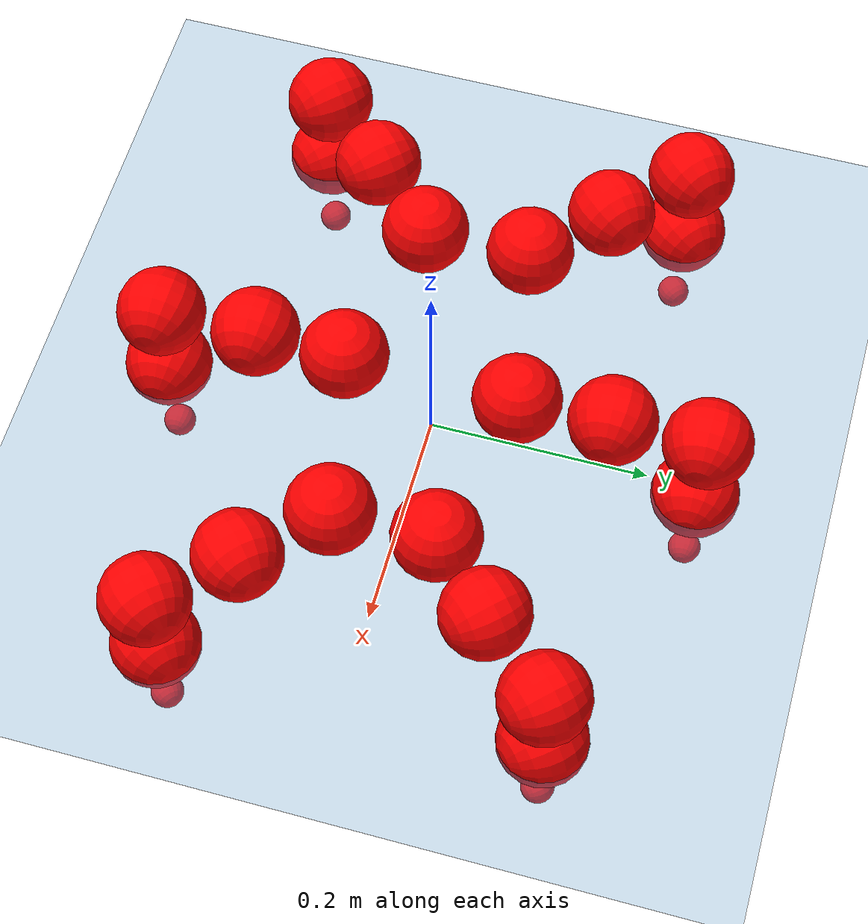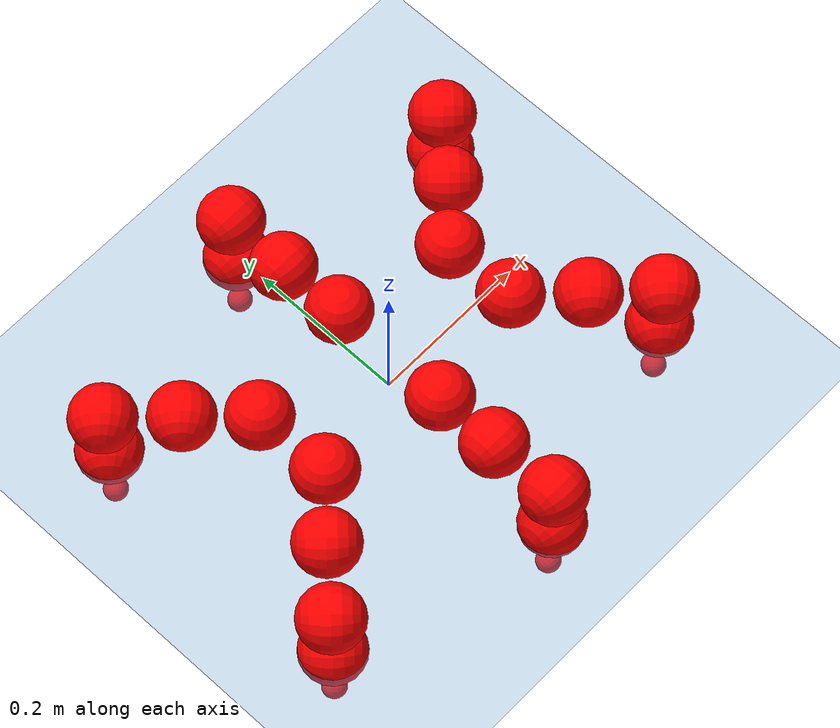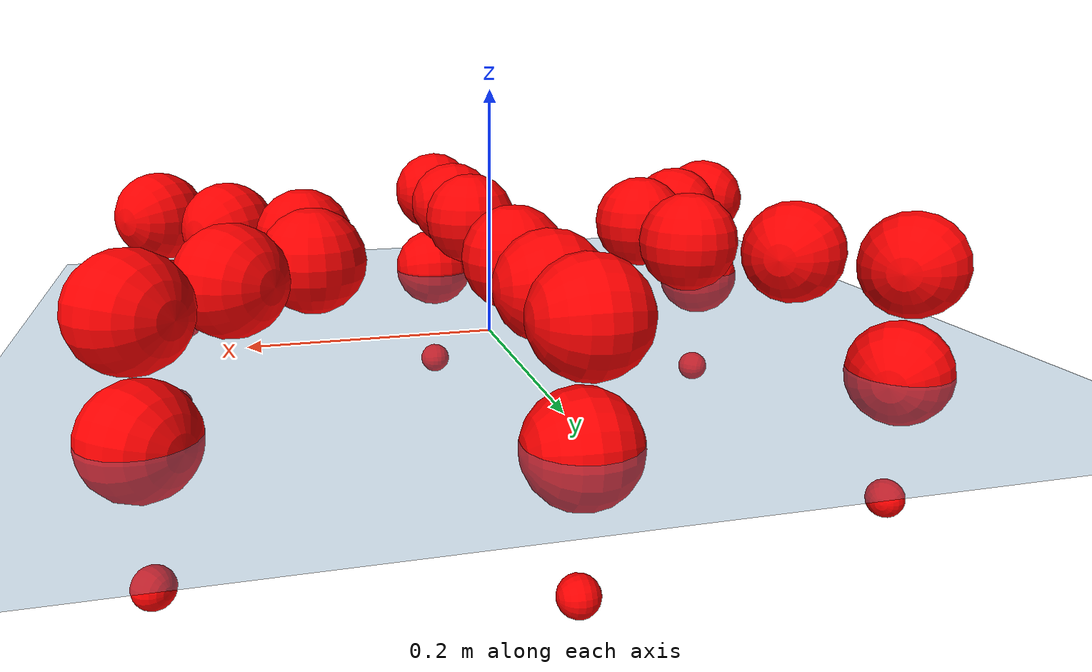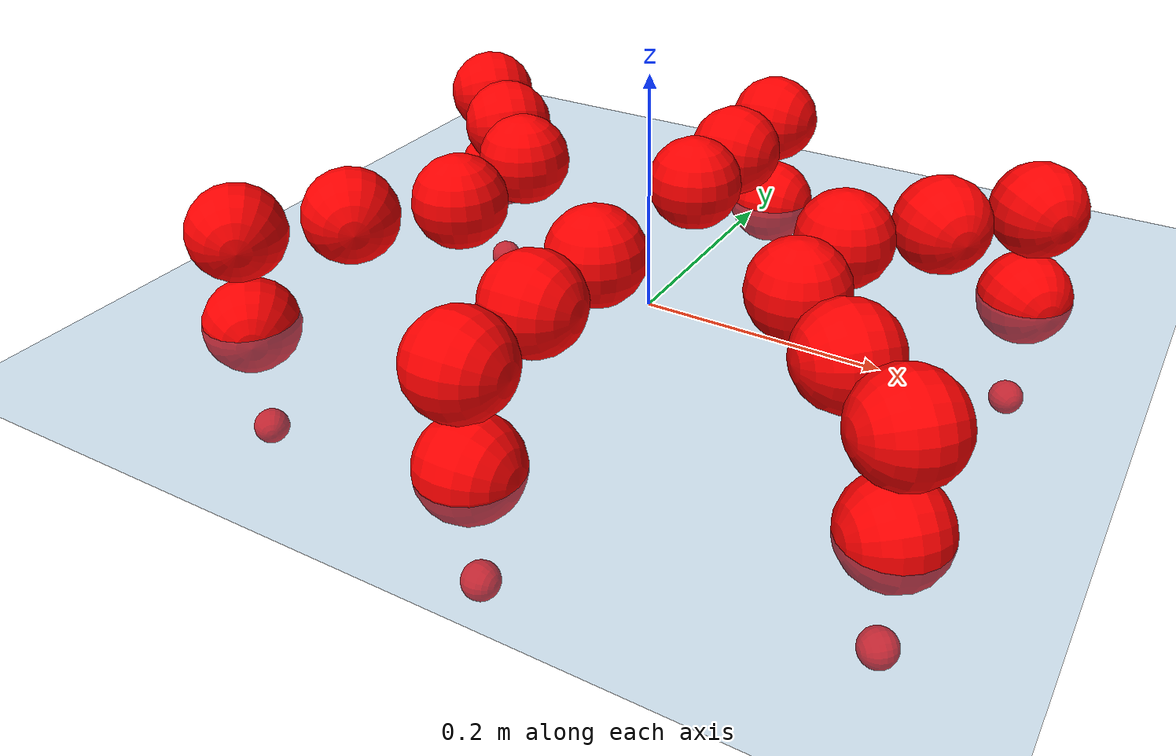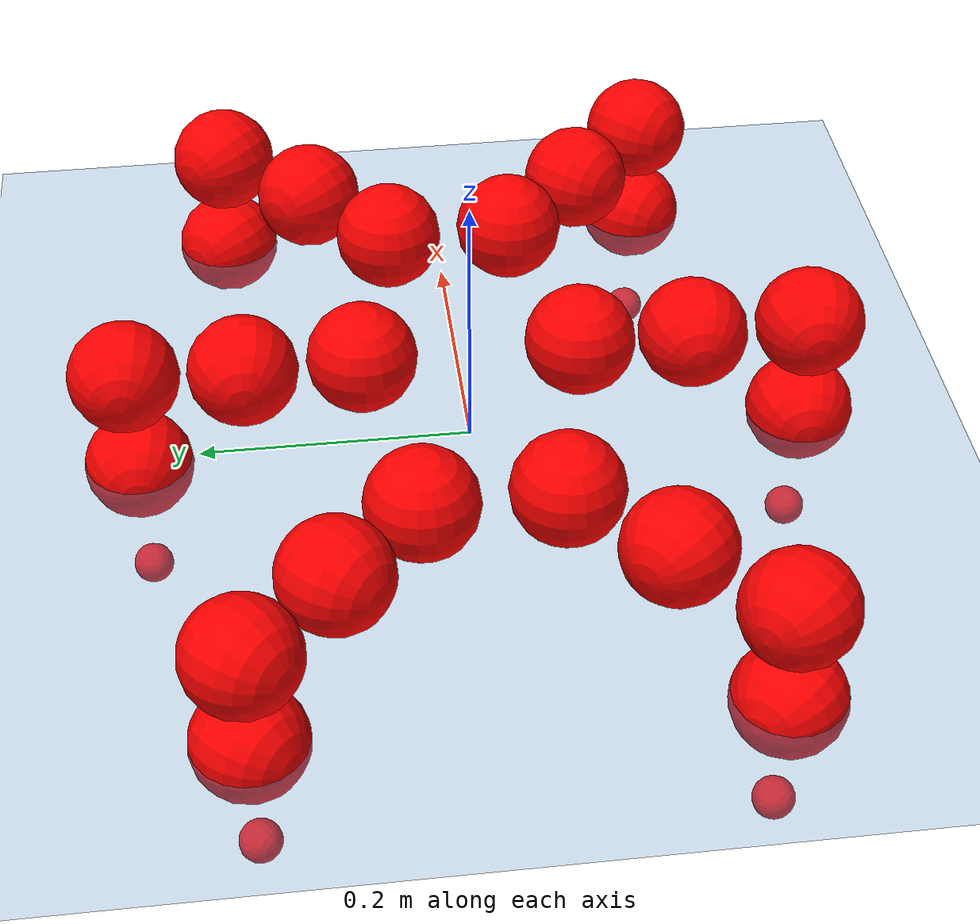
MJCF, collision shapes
<mujoco model="Golem">
  <compiler angle="radian" assetdir="assets" balanceinertia="true" inertiafromgeom="false"/>

  <option timestep="0.005" density="1.2" viscosity="2e-05"/>

  <size nkey="1"/>

  <visual>
    <quality shadowsize="8192"/>
    <map shadowclip="0.5"/>
  </visual>

  <default>
    <default class="/">
      <joint armature="0.01" damping="0.01" frictionloss="0.01"/>
      <geom contype="0" conaffinity="0" group="1" solref="-1000 -80"/>
      <site size="0.01 0.005 0.005" group="5"/>
      <general forcelimited="true" biastype="affine" gainprm="25" biasprm="0 -25 -0.5"/>
      <default class="visual">
        <geom type="mesh" group="2"/>
      </default>
      <default class="collision">
        <geom group="3"/>
      </default>
      <default class="foot">
        <geom size="0.01 0 0" condim="6" group="4" priority="1" solimp="0.015 1 0.01"/>
      </default>
      <default class="reward_collision_sphere">
        <geom group="5" rgba="1 0 0 1"/>
      </default>
    </default>
  </default>

  <asset>
    <texture type="skybox" colorspace="auto" name="//unnamed_texture_0" builtin="gradient" rgb1="0.95 0.95 0.95" rgb2="0.95 0.95 0.95" width="100" height="600"/>
    <texture type="2d" colorspace="auto" name="texplane" builtin="checker" rgb1="0.345 0.575 0.748" rgb2="0.345 0.575 0.748" markrgb="1 1 1" width="512" height="512"/>
    <material name="MatPlane" class="/" texture="texplane" texuniform="true" texrepeat="2 2" specular="0.9"/>
    <mesh name="body" class="/" file="body.stl" scale="0.001 0.001 0.001"/>
    <mesh name="coxa" class="/" file="coxa.stl" scale="0.001 0.001 0.001"/>
    <mesh name="femur" class="/" file="femur.stl" scale="0.001 0.001 0.001"/>
    <mesh name="tibia" class="/" file="tibia.stl" scale="0.001 0.001 0.001"/>
    <mesh name="tarsus" class="/" file="tarsus.stl" scale="0.001 0.001 0.001"/>
  </asset>

  <worldbody>
    <geom name="floor" class="/" size="100 100 0.125" type="plane" group="0" material="MatPlane"/>
    <light name="toplight_shadow" class="/" pos="0 0 5" dir="0.0990148 0.0990148 -0.990148" type="directional" ambient="0.04 0.04 0.04" diffuse="0.55 0.55 0.55" specular="0.12 0.12 0.12"/>
    <light name="toplight_fill" class="/" pos="0 0 5" dir="0.0990148 0.0990148 -0.990148" type="directional" castshadow="false" ambient="0.04 0.04 0.04" diffuse="0.3 0.3 0.3" specular="0.08 0.08 0.08"/>
    <body name="trunk" pos="-0.00165332 -0.00052074 -0.000722234" quat="1 -0.000106174 -0.000226821 9.72596e-05">
      <inertial pos="-0.000865412 -0.0015915 -0.00232753" quat="0.999918 -0.00843292 0.00124564 -0.00953207" mass="3.70383" diaginertia="0.00820091 0.00365403 0.0284914"/>
      <joint name="//unnamed_joint_0" type="free"/>
      <geom name="//unnamed_geom_1" class="/" pos="0 0 0.0785926" quat="1 0 0 0" type="mesh" rgba="0.9 0.9 0.9 1" mesh="body"/>
      <site name="imu" class="/" pos="0.128879 0.00401413 0.109289" size="0.0100002"/>
      <camera name="track" class="/" pos="0 -1.63152 0" quat="0.707107 0.707107 0 0" mode="trackcom"/>
      <camera name="ego_camera" class="/" pos="0.124317 0 0.122801" quat="-0.5 -0.5 0.5 0.5"/>
      <body name="coxa_RR" pos="-0.170961 -0.0673625 0.0799278" quat="0.382543 -0.000163719 4.89554e-05 -0.923937">
        <inertial pos="0.00222509 0.0028324 0.00294607" quat="0.999968 -0.00100827 0.0057699 0.00546437" mass="0.197454" diaginertia="0.00795202 0.00373546 0.0270477"/>
        <joint name="coxa_joint_RR" class="/" pos="0 0 0" axis="-0.00133702 0.00442859 -0.999989" range="-3.13298 3.16894" armature="0.0093706" damping="0.00661479" frictionloss="0.0099357"/>
        <geom name="//unnamed_geom_2" class="/" type="mesh" rgba="0.2 0.2 0.2 1" mesh="coxa"/>
        <geom name="//unnamed_geom_3" class="reward_collision_sphere" size="0.0400007" pos="-0.0286886 0 0"/>
        <body name="femur_RR" pos="0.0594701 0.000598926 -0.00105751" quat="0.50113 -0.499565 0.499432 0.499871">
          <inertial pos="-3.69753e-05 0.00265611 0.00104691" quat="1 -0.000706197 0.000511591 0.000328465" mass="0.193136" diaginertia="0.00782155 0.00351863 0.027583"/>
          <joint name="femur_joint_RR" class="/" pos="0 0 0" axis="0.00268556 -0.00346313 -0.99999" stiffness="0.00350926" range="-3.08959 3.09358" armature="0.00999921" damping="0.0303942" frictionloss="0.0113982"/>
          <geom name="//unnamed_geom_4" class="/" type="mesh" rgba="0.9 0.9 0.9 1" mesh="femur"/>
          <geom name="//unnamed_geom_5" class="reward_collision_sphere" size="0.0400007"/>
          <body name="tibia_RR" pos="0.00185533 -0.0887429 0.00286691" quat="0.00136349 0.999999 3.06918e-05 -7.2228e-05">
            <inertial pos="-0.00157979 0.000445347 -0.000711213" quat="0.999902 -0.000120951 0.0129933 -0.00512906" mass="0.19406" diaginertia="0.00819018 0.00358876 0.0281065"/>
            <joint name="tibia_joint_RR" class="/" pos="0 0 0" axis="-0.00502978 -0.000593839 0.999987" stiffness="0.00226509" range="-3.19496 3.15933" armature="0.0100278" damping="0.00820366" frictionloss="0.00951223"/>
            <geom name="//unnamed_geom_6" class="/" type="mesh" rgba="0.2 0.2 0.2 1" mesh="tibia"/>
            <geom name="//unnamed_geom_7" class="reward_collision_sphere" size="0.0400007"/>
            <body name="tarsus_RR" pos="0.0843012 0.00133914 -0.000673513" quat="0.999999 0.000321125 0.000365177 -0.00101798">
              <inertial pos="0.0575014 0.000519351 -0.00274593" quat="0.4985 0.502239 0.499951 0.499302" mass="0.198934" diaginertia="0.00783019 0.00362344 0.0275676"/>
              <joint name="tarsus_joint_RR" class="/" pos="0 0 0" axis="0.0159544 -0.00806507 0.99984" range="-3.14636 3.13697" armature="0.0102903" damping="0.0451591" frictionloss="0.00941713"/>
              <geom name="//unnamed_geom_8" class="/" type="mesh" rgba="0.9 0.9 0.9 1" mesh="tarsus"/>
              <geom name="foot_1" class="foot" size="0.00930414" pos="0.107104 0 0" quat="0 -0.707107 0 0.707107"/>
              <geom name="//unnamed_geom_10" class="reward_collision_sphere" size="0.0400007"/>
              <geom name="//unnamed_geom_11" class="reward_collision_sphere" size="0.0150003" pos="0.102801 0 0"/>
              <site name="foot_1" class="foot" pos="0.107104 0 0" quat="0 -0.707107 0 0.707107" size="0.0100002"/>
            </body>
          </body>
        </body>
      </body>
      <body name="coxa_RM" pos="-3.66487e-05 -0.107692 0.0836555" quat="0.706446 -4.36386e-05 0.000696365 -0.707767">
        <inertial pos="-0.000122545 -0.000601832 -0.00157094" quat="0.999988 -0.000178638 -0.00488681 -0.000192534" mass="0.200293" diaginertia="0.00770808 0.00372871 0.027535"/>
        <joint name="coxa_joint_RM" class="/" pos="0 0 0" axis="0.00175221 -0.00208172 -0.999996" stiffness="0.00165748" range="-3.11423 3.14079" armature="0.0109215" damping="0.0162718" frictionloss="0.0104698"/>
        <geom name="//unnamed_geom_12" class="/" type="mesh" rgba="0.2 0.2 0.2 1" mesh="coxa"/>
        <geom name="//unnamed_geom_13" class="reward_collision_sphere" size="0.0400007" pos="-0.0286886 0 0"/>
        <body name="femur_RM" pos="0.053588 -0.00119909 0.00024008" quat="0.499795 -0.499305 0.499807 0.501091">
          <inertial pos="0.00013379 -0.00269604 0.00271636" quat="0.999987 0.00132919 -0.00434255 0.00226598" mass="0.211002" diaginertia="0.00787337 0.00364378 0.0277644"/>
          <joint name="femur_joint_RM" class="/" pos="0 0 0" axis="-0.00119684 1.28409e-05 -0.999999" range="-3.11469 3.09242" armature="0.00964433" damping="0.0235652" frictionloss="0.0100042"/>
          <geom name="//unnamed_geom_14" class="/" type="mesh" rgba="0.9 0.9 0.9 1" mesh="femur"/>
          <geom name="//unnamed_geom_15" class="reward_collision_sphere" size="0.0400007"/>
          <body name="tibia_RM" pos="-0.000284029 -0.0870951 0.00203046" quat="0.000667436 1 8.78554e-05 0.000275344">
            <inertial pos="-0.00189173 0.000469411 -0.00221412" quat="0.999975 0.000631114 0.00242287 -0.00663337" mass="0.202004" diaginertia="0.00808539 0.00360236 0.0283669"/>
            <joint name="tibia_joint_RM" class="/" pos="0 0 0" axis="0.005249 -0.0105313 0.999931" stiffness="0.0069513" range="-3.14431 3.15136" armature="0.00957869" damping="0.00253796" frictionloss="0.00886643"/>
            <geom name="//unnamed_geom_16" class="/" type="mesh" rgba="0.2 0.2 0.2 1" mesh="tibia"/>
            <geom name="//unnamed_geom_17" class="reward_collision_sphere" size="0.0400007"/>
            <body name="tarsus_RM" pos="0.0825496 0.000804495 -0.00118626" quat="1 1.89971e-06 7.19655e-06 -1.49825e-05">
              <inertial pos="0.0585883 5.31786e-05 0.000586054" quat="0.490331 0.503046 0.508626 0.497815" mass="0.199862" diaginertia="0.00804161 0.00361069 0.029698"/>
              <joint name="tarsus_joint_RM" class="/" pos="0 0 0" axis="-0.00310671 0.00253772 0.999992" stiffness="0.0015912" range="-3.17687 3.1117" armature="0.00867411" damping="0.00942987" frictionloss="0.010684"/>
              <geom name="//unnamed_geom_18" class="/" type="mesh" rgba="0.9 0.9 0.9 1" mesh="tarsus"/>
              <geom name="foot_2" class="foot" size="0.0109841" pos="0.107104 0 0" quat="0 -0.707107 0 0.707107"/>
              <geom name="//unnamed_geom_20" class="reward_collision_sphere" size="0.0400007"/>
              <geom name="//unnamed_geom_21" class="reward_collision_sphere" size="0.0150003" pos="0.102801 0 0"/>
              <site name="foot_2" class="foot" pos="0.107104 0 0" quat="0 -0.707107 0 0.707107" size="0.0100002"/>
            </body>
          </body>
        </body>
      </body>
      <body name="coxa_RF" pos="0.170317 -0.0670473 0.0798824" quat="0.923877 -5.93656e-05 3.17013e-06 -0.382689">
        <inertial pos="-7.96361e-05 -0.000331737 0.000183036" quat="0.999988 -0.00456962 0.00163753 1.20012e-05" mass="0.203397" diaginertia="0.00781683 0.00351978 0.0276597"/>
        <joint name="coxa_joint_RF" class="/" pos="0 0 0" axis="-0.0152938 0.00880982 -0.999844" stiffness="0.0157356" range="-3.08303 3.14599" armature="0.00849643" damping="0.0198524" frictionloss="0.0102812"/>
        <geom name="//unnamed_geom_22" class="/" type="mesh" rgba="0.2 0.2 0.2 1" mesh="coxa"/>
        <geom name="//unnamed_geom_23" class="reward_collision_sphere" size="0.0400007" pos="-0.0286886 0 0"/>
        <body name="femur_RF" pos="0.0590153 -0.000531526 -0.0012301" quat="0.500066 -0.49993 0.499945 0.500059">
          <inertial pos="-0.000617574 -0.00256488 -0.00093637" quat="0.999994 0.00238205 0.000593413 0.00225888" mass="0.207562" diaginertia="0.00802842 0.00365306 0.0283312"/>
          <joint name="femur_joint_RF" class="/" pos="0 0 0" axis="-0.00102782 -0.00623671 -0.99998" range="-3.14136 3.08743" armature="0.0092886" damping="0.00765793" frictionloss="0.0107118"/>
          <geom name="//unnamed_geom_24" class="/" type="mesh" rgba="0.9 0.9 0.9 1" mesh="femur"/>
          <geom name="//unnamed_geom_25" class="reward_collision_sphere" size="0.0400007"/>
          <body name="tibia_RF" pos="-0.00303172 -0.085577 0.000497577" quat="-0.000566281 0.999999 -9.16552e-05 -0.00107037">
            <inertial pos="0.0017433 -0.000348607 0.000944856" quat="0.999981 -0.0045082 0.00347638 -0.00241956" mass="0.192893" diaginertia="0.00798317 0.00351391 0.0269476"/>
            <joint name="tibia_joint_RF" class="/" pos="0 0 0" axis="-0.00105734 0.00297013 0.999995" range="-3.13572 3.13227" armature="0.0103471" damping="0" frictionloss="0.0113543"/>
            <geom name="//unnamed_geom_26" class="/" type="mesh" rgba="0.2 0.2 0.2 1" mesh="tibia"/>
            <geom name="//unnamed_geom_27" class="reward_collision_sphere" size="0.0400007"/>
            <body name="tarsus_RF" pos="0.0815692 -0.000504484 -0.000634406" quat="1 0.000249945 0.000253612 0.000465933">
              <inertial pos="0.0559019 -0.000145351 3.19797e-05" quat="0.503787 0.500952 0.490965 0.504182" mass="0.195474" diaginertia="0.00772407 0.00353481 0.0270188"/>
              <joint name="tarsus_joint_RF" class="/" pos="0 0 0" axis="-0.012621 -0.00391738 0.999913" stiffness="0.00140768" range="-3.13387 3.15023" armature="0.00985498" damping="0.0080158" frictionloss="0.0111519"/>
              <geom name="//unnamed_geom_28" class="/" type="mesh" rgba="0.9 0.9 0.9 1" mesh="tarsus"/>
              <geom name="foot_3" class="foot" size="0.0100918" pos="0.107104 0 0" quat="0 -0.707107 0 0.707107"/>
              <geom name="//unnamed_geom_30" class="reward_collision_sphere" size="0.0400007"/>
              <geom name="//unnamed_geom_31" class="reward_collision_sphere" size="0.0150003" pos="0.102801 0 0"/>
              <site name="foot_3" class="foot" pos="0.107104 0 0" quat="0 -0.707107 0 0.707107" size="0.0100002"/>
            </body>
          </body>
        </body>
      </body>
      <body name="coxa_LR" pos="-0.17347 0.0709056 0.0798122" quat="0.382699 -3.84482e-05 9.10299e-05 0.923873">
        <inertial pos="0.00022987 0.000714423 0.00313142" quat="0.999988 0.00249602 -0.00346393 -0.00249927" mass="0.19073" diaginertia="0.00783774 0.00360325 0.0280133"/>
        <joint name="coxa_joint_LR" class="/" pos="0 0 0" axis="-8.89902e-05 -0.00272415 -0.999996" range="-3.12111 3.14249" armature="0.00864408" damping="0.0175777" frictionloss="0.00955213"/>
        <geom name="//unnamed_geom_32" class="/" type="mesh" rgba="0.2 0.2 0.2 1" mesh="coxa"/>
        <geom name="//unnamed_geom_33" class="reward_collision_sphere" size="0.0400007" pos="-0.0286886 0 0"/>
        <body name="femur_LR" pos="0.0571952 -0.000709279 0.000804087" quat="0.500141 -0.499841 0.501078 0.498938">
          <inertial pos="-0.000631223 -0.000708377 0.0025765" quat="0.999902 0.000744097 -0.00567865 0.0127433" mass="0.206789" diaginertia="0.00826078 0.00349527 0.0287236"/>
          <joint name="femur_joint_LR" class="/" pos="0 0 0" axis="0.00725577 -0.00633222 0.999954" range="-3.14217 3.14353" armature="0.00999969" damping="0.00881883" frictionloss="0.00873266"/>
          <geom name="//unnamed_geom_34" class="/" type="mesh" rgba="0.9 0.9 0.9 1" mesh="femur"/>
          <geom name="//unnamed_geom_35" class="reward_collision_sphere" size="0.0400007"/>
          <body name="tibia_LR" pos="0.000241624 -0.087263 0.00038727" quat="-0.000718972 0.999999 0.00067136 0.000633711">
            <inertial pos="0.00132328 -0.00249403 0.000302934" quat="0.999989 -0.00405777 -0.00143149 0.00208575" mass="0.20027" diaginertia="0.00781491 0.00359434 0.0268862"/>
            <joint name="tibia_joint_LR" class="/" pos="0 0 0" axis="-9.27265e-05 0.00249887 -0.999997" range="-3.14447 3.16451" armature="0.00859706" damping="0.0146221" frictionloss="0.0086247"/>
            <geom name="//unnamed_geom_36" class="/" type="mesh" rgba="0.2 0.2 0.2 1" mesh="tibia"/>
            <geom name="//unnamed_geom_37" class="reward_collision_sphere" size="0.0400007"/>
            <body name="tarsus_LR" pos="0.0830066 -0.00148252 0.00250095" quat="1 2.08042e-05 -0.000217167 -0.000285192">
              <inertial pos="0.0592192 -0.000108451 0.00250096" quat="0.501554 0.4971 0.501661 0.49967" mass="0.193607" diaginertia="0.00776598 0.00371336 0.0280891"/>
              <joint name="tarsus_joint_LR" class="/" pos="0 0 0" axis="0.00163759 0.000287132 -0.999999" stiffness="0.0127287" range="-3.16367 3.11421" armature="0.00918646" damping="0.0277742" frictionloss="0.0106915"/>
              <geom name="//unnamed_geom_38" class="/" type="mesh" rgba="0.9 0.9 0.9 1" mesh="tarsus"/>
              <geom name="foot_4" class="foot" size="0.0110503" pos="0.107104 0 0" quat="0.707107 0 -0.707107 0"/>
              <geom name="//unnamed_geom_40" class="reward_collision_sphere" size="0.0400007"/>
              <geom name="//unnamed_geom_41" class="reward_collision_sphere" size="0.0150003" pos="0.102801 0 0"/>
              <site name="foot_4" class="foot" pos="0.107104 0 0" quat="0.707107 0 -0.707107 0" size="0.0100002"/>
            </body>
          </body>
        </body>
      </body>
      <body name="coxa_LM" pos="0.00225728 0.106955 0.0806321" quat="0.707017 0.00121493 0.000870097 0.707195">
        <inertial pos="-5.17103e-05 -0.00106707 0.00288755" quat="1 3.2646e-05 5.38509e-05 -8.97756e-05" mass="0.198915" diaginertia="0.00820183 0.00358823 0.0275917"/>
        <joint name="coxa_joint_LM" class="/" pos="0 0 0" axis="0.00708517 -0.0100969 -0.999924" range="-3.09383 3.09187" armature="0.0103872" damping="0.0201154" frictionloss="0.0111938"/>
        <geom name="//unnamed_geom_42" class="/" type="mesh" rgba="0.2 0.2 0.2 1" mesh="coxa"/>
        <geom name="//unnamed_geom_43" class="reward_collision_sphere" size="0.0400007" pos="-0.0286886 0 0"/>
        <body name="femur_LM" pos="0.0564796 0.00216776 -0.00225817" quat="0.499921 -0.500262 0.500026 0.499791">
          <inertial pos="-0.00194138 0.00224066 -0.00160455" quat="0.999979 -0.00554718 -0.000916864 0.00328082" mass="0.205792" diaginertia="0.00836703 0.00362631 0.0295168"/>
          <joint name="femur_joint_LM" class="/" pos="0 0 0" axis="-0.0140281 0.00192448 0.9999" stiffness="0.00789803" range="-3.08347 3.14273" armature="0.0105311" damping="0.00125951" frictionloss="0.00982804"/>
          <geom name="//unnamed_geom_44" class="/" type="mesh" rgba="0.9 0.9 0.9 1" mesh="femur"/>
          <geom name="//unnamed_geom_45" class="reward_collision_sphere" size="0.0400007"/>
          <body name="tibia_LM" pos="-0.001213 -0.0840578 -0.00140615" quat="-3.7208e-05 1 0.000126253 -9.08356e-06">
            <inertial pos="0.00278939 0.00040226 0.00278419" quat="0.999908 -0.0114166 -0.00699672 0.00220041" mass="0.202586" diaginertia="0.0078806 0.00354225 0.0268308"/>
            <joint name="tibia_joint_LM" class="/" pos="0 0 0" axis="0.010447 -0.00617872 -0.999926" range="-3.19389 3.17047" armature="0.00976375" damping="0.00419275" frictionloss="0.00885379"/>
            <geom name="//unnamed_geom_46" class="/" type="mesh" rgba="0.2 0.2 0.2 1" mesh="tibia"/>
            <geom name="//unnamed_geom_47" class="reward_collision_sphere" size="0.0400007"/>
            <body name="tarsus_LM" pos="0.0854137 -0.0024464 0.00252023" quat="1 -6.02546e-05 3.03714e-05 4.63742e-05">
              <inertial pos="0.0549433 0.000889394 -0.000131545" quat="0.496874 0.509312 0.501751 0.491898" mass="0.197851" diaginertia="0.0082994 0.00363864 0.0278538"/>
              <joint name="tarsus_joint_LM" class="/" pos="0 0 0" axis="0.0109668 -0.00841709 -0.999904" range="-3.13756 3.10078" armature="0.010593" damping="0.00406037" frictionloss="0.010087"/>
              <geom name="//unnamed_geom_48" class="/" type="mesh" rgba="0.9 0.9 0.9 1" mesh="tarsus"/>
              <geom name="foot_5" class="foot" size="0.0111756" pos="0.107104 0 0" quat="0.707107 0 -0.707107 0"/>
              <geom name="//unnamed_geom_50" class="reward_collision_sphere" size="0.0400007"/>
              <geom name="//unnamed_geom_51" class="reward_collision_sphere" size="0.0150003" pos="0.102801 0 0"/>
              <site name="foot_5" class="foot" pos="0.107104 0 0" quat="0.707107 0 -0.707107 0" size="0.0100002"/>
            </body>
          </body>
        </body>
      </body>
      <body name="coxa_LF" pos="0.169962 0.0666831 0.0790245" quat="0.923933 4.07679e-05 0.000219487 0.382555">
        <inertial pos="0.000484978 0.0023021 0.000241386" quat="1 -0.000420364 0.000861376 -0.000144331" mass="0.19658" diaginertia="0.00775394 0.00357288 0.0276999"/>
        <joint name="coxa_joint_LF" class="/" pos="0 0 0" axis="0.00404414 0.00111744 -0.999991" range="-3.14194 3.083" armature="0.0112015" damping="0.0100011" frictionloss="0.0099533"/>
        <geom name="//unnamed_geom_52" class="/" type="mesh" rgba="0.2 0.2 0.2 1" mesh="coxa"/>
        <geom name="//unnamed_geom_53" class="reward_collision_sphere" size="0.0400007" pos="-0.0286886 0 0"/>
        <body name="femur_LF" pos="0.0545012 -0.00118562 0.00139376" quat="0.499636 -0.499928 0.499238 0.501196">
          <inertial pos="-0.000662344 0.00257891 -0.00250572" quat="0.999988 -0.00217462 -0.00262149 -0.0034244" mass="0.197482" diaginertia="0.00775421 0.00343838 0.0274329"/>
          <joint name="femur_joint_LF" class="/" pos="0 0 0" axis="-0.00478929 1.03891e-06 0.999989" stiffness="0.00841925" range="-3.13357 3.13763" armature="0.00947375" damping="0.00302596" frictionloss="0.0109472"/>
          <geom name="//unnamed_geom_54" class="/" type="mesh" rgba="0.9 0.9 0.9 1" mesh="femur"/>
          <geom name="//unnamed_geom_55" class="reward_collision_sphere" size="0.0400007"/>
          <body name="tibia_LF" pos="0.000505095 -0.0887333 0.00348931" quat="-0.000493584 0.999999 -3.2972e-05 -0.00101745">
            <inertial pos="0.00268327 0.00288401 0.00113772" quat="1 -4.90896e-05 0.000143447 7.34499e-05" mass="0.20105" diaginertia="0.00798776 0.00369248 0.0292158"/>
            <joint name="tibia_joint_LF" class="/" pos="0 0 0" axis="-0.00197554 -9.21213e-05 -0.999998" range="-3.16151 3.08752" armature="0.0108247" damping="0.0114" frictionloss="0.00975726"/>
            <geom name="//unnamed_geom_56" class="/" type="mesh" rgba="0.2 0.2 0.2 1" mesh="tibia"/>
            <geom name="//unnamed_geom_57" class="reward_collision_sphere" size="0.0400007"/>
            <body name="tarsus_LF" pos="0.0829428 0.00213116 -0.000950668" quat="1 -0.000550359 -0.000412544 0.000182471">
              <inertial pos="0.0586152 -0.000162725 -0.00041769" quat="0.501829 0.500043 0.501139 0.496975" mass="0.19533" diaginertia="0.00762399 0.00354149 0.0269938"/>
              <joint name="tarsus_joint_LF" class="/" pos="0 0 0" axis="-0.00078367 -0.00138164 -0.999999" range="-3.12786 3.14724" armature="0.0102184" damping="0.00158432" frictionloss="0.0104954"/>
              <geom name="//unnamed_geom_58" class="/" type="mesh" rgba="0.9 0.9 0.9 1" mesh="tarsus"/>
              <geom name="foot_6" class="foot" size="0.00954505" pos="0.107104 0 0" quat="0.707107 0 -0.707107 0"/>
              <geom name="//unnamed_geom_60" class="reward_collision_sphere" size="0.0400007"/>
              <geom name="//unnamed_geom_61" class="reward_collision_sphere" size="0.0150003" pos="0.102801 0 0"/>
              <site name="foot_6" class="foot" pos="0.107104 0 0" quat="0.707107 0 -0.707107 0" size="0.0100002"/>
            </body>
          </body>
        </body>
      </body>
    </body>
  </worldbody>

  <contact>
    <pair class="/" geom1="floor" geom2="foot_1" name="//unnamed_contact_0"/>
    <pair class="/" geom1="floor" geom2="foot_2" name="//unnamed_contact_1"/>
    <pair class="/" geom1="floor" geom2="foot_3" name="//unnamed_contact_2"/>
    <pair class="/" geom1="floor" geom2="foot_4" name="//unnamed_contact_3"/>
    <pair class="/" geom1="floor" geom2="foot_5" name="//unnamed_contact_4"/>
    <pair class="/" geom1="floor" geom2="foot_6" name="//unnamed_contact_5"/>
  </contact>

  <actuator>
    <general name="coxa_joint_RR" class="/" joint="coxa_joint_RR" forcerange="-7.31219 7.31219" gainprm="25.2154" biasprm="0 -25.2154 -0.478565"/>
    <general name="femur_joint_RR" class="/" joint="femur_joint_RR" forcerange="-7.34138 7.34138" gainprm="25.2154" biasprm="0 -25.2154 -0.478565"/>
    <general name="tibia_joint_RR" class="/" joint="tibia_joint_RR" forcerange="-7.06587 7.06587" gainprm="25.2154" biasprm="0 -25.2154 -0.478565"/>
    <general name="tarsus_joint_RR" class="/" joint="tarsus_joint_RR" forcerange="-6.65696 6.65696" gainprm="25.2154" biasprm="0 -25.2154 -0.478565"/>
    <general name="coxa_joint_RM" class="/" joint="coxa_joint_RM" forcerange="-6.60129 6.60129" gainprm="25.2154" biasprm="0 -25.2154 -0.478565"/>
    <general name="femur_joint_RM" class="/" joint="femur_joint_RM" forcerange="-6.95035 6.95035" gainprm="25.2154" biasprm="0 -25.2154 -0.478565"/>
    <general name="tibia_joint_RM" class="/" joint="tibia_joint_RM" forcerange="-7.2299 7.2299" gainprm="25.2154" biasprm="0 -25.2154 -0.478565"/>
    <general name="tarsus_joint_RM" class="/" joint="tarsus_joint_RM" forcerange="-8.04785 8.04785" gainprm="25.2154" biasprm="0 -25.2154 -0.478565"/>
    <general name="coxa_joint_RF" class="/" joint="coxa_joint_RF" forcerange="-7.04567 7.04567" gainprm="25.2154" biasprm="0 -25.2154 -0.478565"/>
    <general name="femur_joint_RF" class="/" joint="femur_joint_RF" forcerange="-6.87525 6.87525" gainprm="25.2154" biasprm="0 -25.2154 -0.478565"/>
    <general name="tibia_joint_RF" class="/" joint="tibia_joint_RF" forcerange="-7.78875 7.78875" gainprm="25.2154" biasprm="0 -25.2154 -0.478565"/>
    <general name="tarsus_joint_RF" class="/" joint="tarsus_joint_RF" forcerange="-8.06631 8.06631" gainprm="25.2154" biasprm="0 -25.2154 -0.478565"/>
    <general name="coxa_joint_LR" class="/" joint="coxa_joint_LR" forcerange="-7.21132 7.21132" gainprm="25.2154" biasprm="0 -25.2154 -0.478565"/>
    <general name="femur_joint_LR" class="/" joint="femur_joint_LR" forcerange="-6.59282 6.59282" gainprm="25.2154" biasprm="0 -25.2154 -0.478565"/>
    <general name="tibia_joint_LR" class="/" joint="tibia_joint_LR" forcerange="-7.40864 7.40864" gainprm="25.2154" biasprm="0 -25.2154 -0.478565"/>
    <general name="tarsus_joint_LR" class="/" joint="tarsus_joint_LR" forcerange="-7.03865 7.03865" gainprm="25.2154" biasprm="0 -25.2154 -0.478565"/>
    <general name="coxa_joint_LM" class="/" joint="coxa_joint_LM" forcerange="-8.03684 8.03684" gainprm="25.2154" biasprm="0 -25.2154 -0.478565"/>
    <general name="femur_joint_LM" class="/" joint="femur_joint_LM" forcerange="-7.20602 7.20602" gainprm="25.2154" biasprm="0 -25.2154 -0.478565"/>
    <general name="tibia_joint_LM" class="/" joint="tibia_joint_LM" forcerange="-7.16651 7.16651" gainprm="25.2154" biasprm="0 -25.2154 -0.478565"/>
    <general name="tarsus_joint_LM" class="/" joint="tarsus_joint_LM" forcerange="-6.53308 6.53308" gainprm="25.2154" biasprm="0 -25.2154 -0.478565"/>
    <general name="coxa_joint_LF" class="/" joint="coxa_joint_LF" forcerange="-7.17689 7.17689" gainprm="25.2154" biasprm="0 -25.2154 -0.478565"/>
    <general name="femur_joint_LF" class="/" joint="femur_joint_LF" forcerange="-7.24934 7.24934" gainprm="25.2154" biasprm="0 -25.2154 -0.478565"/>
    <general name="tibia_joint_LF" class="/" joint="tibia_joint_LF" forcerange="-8.04386 8.04386" gainprm="25.2154" biasprm="0 -25.2154 -0.478565"/>
    <general name="tarsus_joint_LF" class="/" joint="tarsus_joint_LF" forcerange="-7.29413 7.29413" gainprm="25.2154" biasprm="0 -25.2154 -0.478565"/>
  </actuator>

  <sensor>
    <gyro site="imu" name="imu_angular_velocity"/>
    <velocimeter site="imu" name="imu_linear_velocity"/>
    <framelinvel objtype="site" objname="foot_1" name="foot_1_global_linear_velocity"/>
    <framelinvel objtype="site" objname="foot_2" name="foot_2_global_linear_velocity"/>
    <framelinvel objtype="site" objname="foot_3" name="foot_3_global_linear_velocity"/>
    <framelinvel objtype="site" objname="foot_4" name="foot_4_global_linear_velocity"/>
    <framelinvel objtype="site" objname="foot_5" name="foot_5_global_linear_velocity"/>
    <framelinvel objtype="site" objname="foot_6" name="foot_6_global_linear_velocity"/>
  </sensor>

  <keyframe>
    <key name="home" qpos="0 0 0.1457 1 0 0 0 0 0 0 0 0 0 0 0 0 0 0 0 0 0 0 0 0 0 0 0 0 0 0 0"/>
  </keyframe>
</mujoco>
